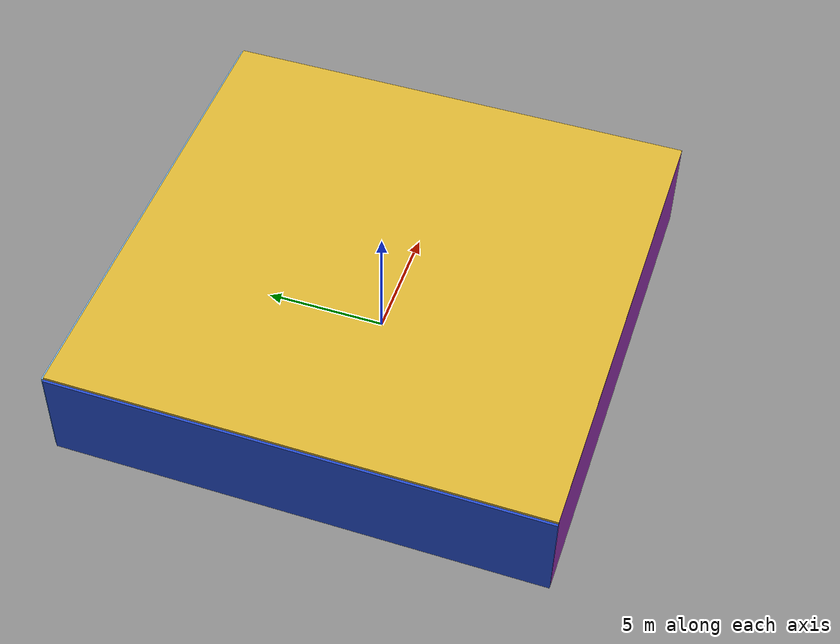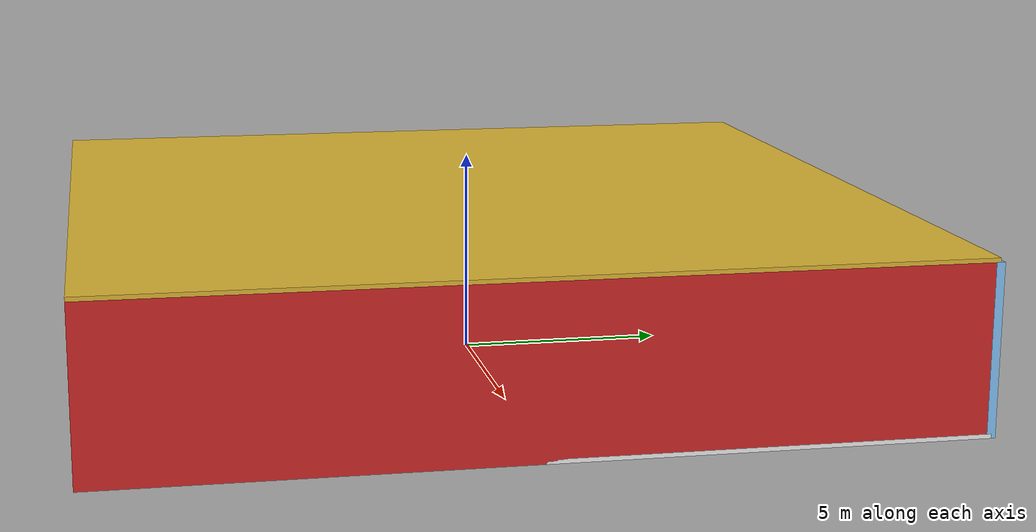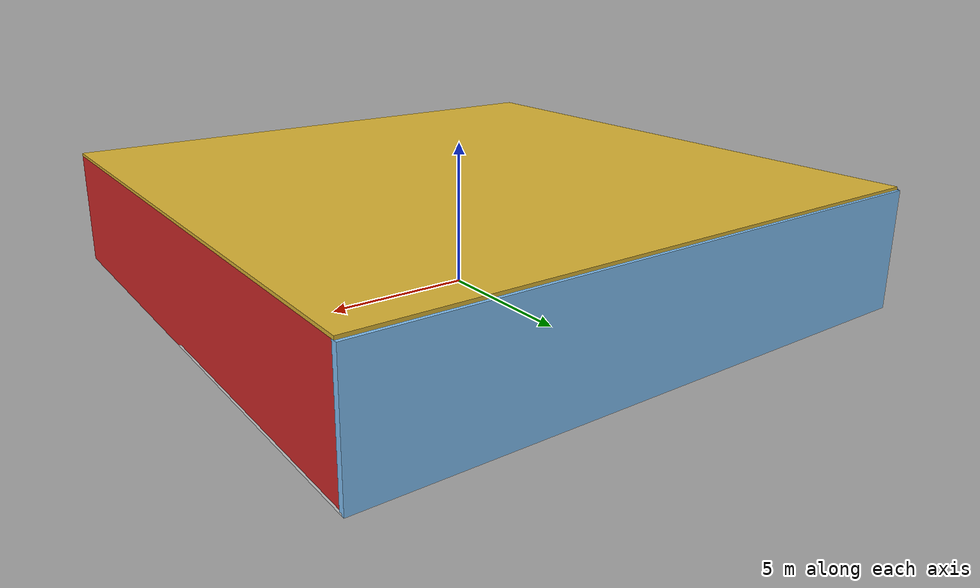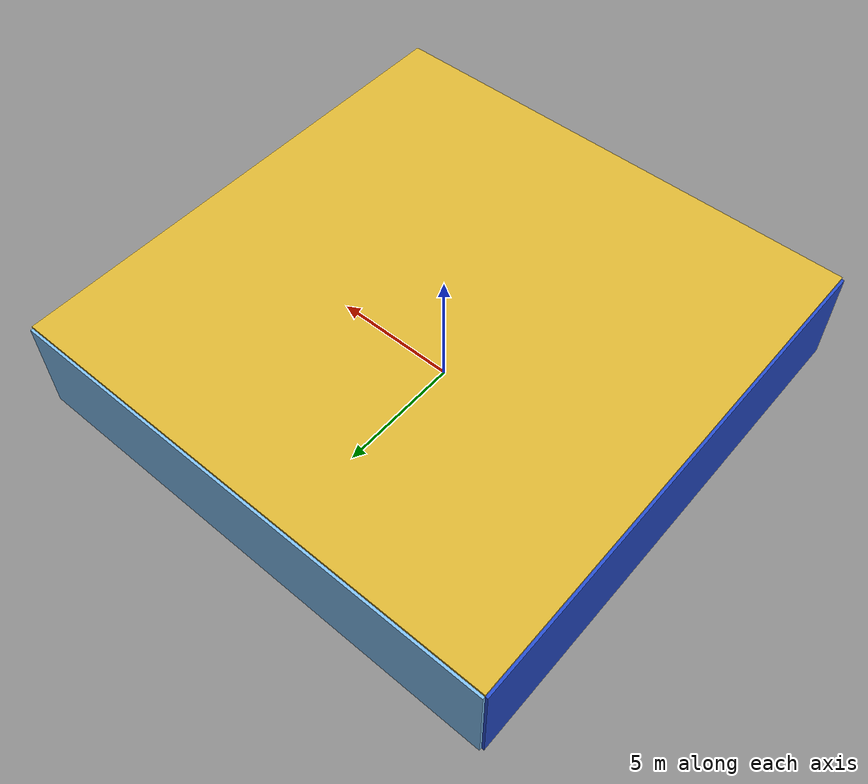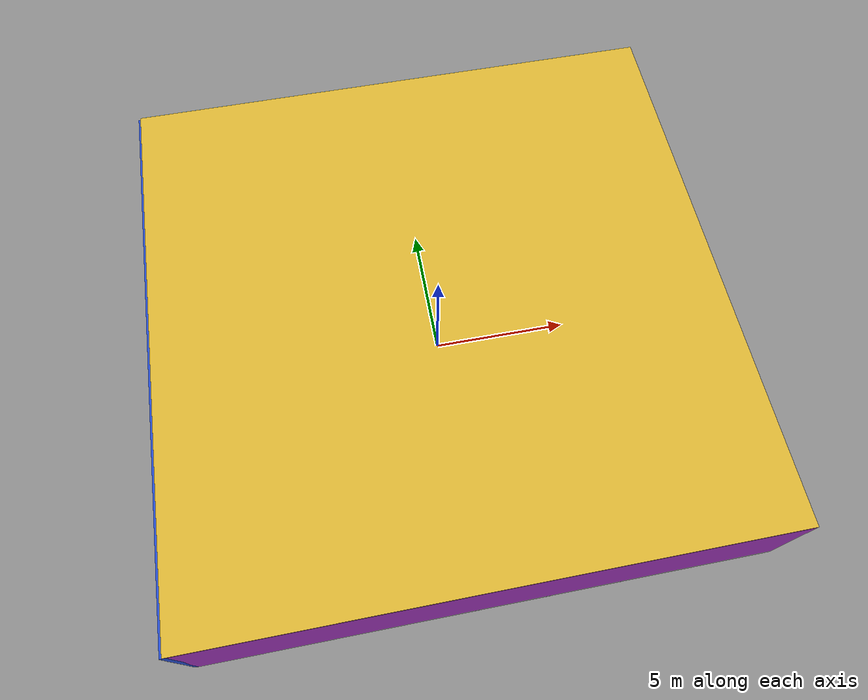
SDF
<sdf version="1.4">
 <world name="default">
  <physics type="ode">
   <max_step_size>0.001</max_step_size>
   <real_time_factor>1</real_time_factor>
   <real_time_update_rate>1000</real_time_update_rate>
   <gravity>0 0 -9.8</gravity>
  </physics>
  <scene><ambient>0.4 0.4 0.4 1</ambient><background>0.7 0.7 0.7 1</background><shadows>1</shadows></scene>
  <model name="Surrounding">
   <static>1</static>
   <link name="Ceiling">
    <collision name="Ceiling_Collision"><geometry><box><size>20 20 0.1</size></box></geometry></collision>
    <visual name="Ceiling_Visual">
     <geometry><box><size>20 20 0.1</size></box></geometry>
     <material>
      <script><uri>file://media/materials/scripts/gazebo.material</uri><name>Gazebo/Gold</name></script>
     </material>
    </visual>
    <pose>0 0 4.05 0 0 0</pose>
   </link>
   <link name="Wall_South">
    <collision name="Wall_South_Collision">
     <geometry><box><size>20 0 4</size></box></geometry>
     <pose>0 0 2 0 -0 0</pose>
    </collision>
    <visual name="Wall_South_Visual">
     <pose>0 0 2 0 -0 0</pose>
     <geometry><box><size>20 0 4</size></box></geometry>
     <material>
      <script><uri>file://media/materials/scripts/gazebo.material</uri><name>Gazebo/PurpleGlow</name></script>
     </material>
    </visual>
    <velocity_decay><linear>0</linear><angular>0</angular></velocity_decay>
    <pose>0 -10 0 0 -0 0</pose>
   </link>
   <link name="Wall_East">
    <collision name="Wall_21_Collision">
     <geometry><box><size>20 0 4</size></box></geometry>
     <pose>0 0 2 0 -0 0</pose>
    </collision>
    <visual name="Wall_21_Visual">
     <pose>0 0 2 0 -0 0</pose>
     <geometry><box><size>20 0 4</size></box></geometry>
     <material>
      <script><uri>file://media/materials/scripts/gazebo.material</uri><name>Gazebo/RedBright</name></script>
     </material>
    </visual>
    <velocity_decay><linear>0</linear><angular>0</angular></velocity_decay>
    <pose>10 0 0 0 -0 1.5708</pose>
   </link>
   <link name="Wall_North">
    <collision name="Wall_22_Collision">
     <geometry><box><size>20 0.2 4</size></box></geometry>
     <pose>0 0 2 0 -0 0</pose>
    </collision>
    <visual name="Wall_22_Visual">
     <pose>0 0 2 0 -0 0</pose>
     <geometry><box><size>20 0.2 4</size></box></geometry>
     <material>
      <script><uri>file://media/materials/scripts/gazebo.material</uri><name>Gazebo/SkyBlue</name></script>
     </material>
    </visual>
    <velocity_decay><linear>0</linear><angular>0</angular></velocity_decay>
    <pose>0 10 0 0 -0 0</pose>
   </link>
   <link name="Wall_West">
    <collision name="Wall_23_Collision">
     <geometry><box><size>20 0.2 4</size></box></geometry>
     <pose>0 0 2 0 -0 0</pose>
    </collision>
    <visual name="Wall_23_Visual">
     <pose>0 0 2 0 -0 0</pose>
     <geometry><box><size>20 0.2 4</size></box></geometry>
     <material>
      <script><uri>file://media/materials/scripts/gazebo.material</uri><name>Gazebo/BlueGlow</name></script>
     </material>
    </visual>
    <velocity_decay><linear>0</linear><angular>0</angular></velocity_decay>
    <pose>-10 0 0 0 0 -1.5708</pose>
   </link>
   <link name="Ground_link">
    <collision name="collision">
     <pose>0 0 .05 0 -0 0</pose>
     <geometry><box><size>20 20 0.1</size></box></geometry>
    </collision>
    <visual name="visual">
     <pose>0 0 .05 0 -0 0</pose>
     <geometry><box><size>20 20 0.1</size></box></geometry>
     <material>
      <script><uri>file://media/materials/scripts/gazebo.material</uri><name>Gazebo/White</name></script>
     </material>
    </visual>
   </link>
   <static>1</static>
  </model>
  <spherical_coordinates>
   <surface_model>EARTH_WGS84</surface_model>
   <latitude_deg>0</latitude_deg>
   <longitude_deg>0</longitude_deg>
   <elevation>0</elevation>
   <heading_deg>0</heading_deg>
  </spherical_coordinates>
  <light name="lightball_0" type="diffuse">
   <diffuse>0.8 0.8 0.8 1</diffuse>
   <specular>0.2 0.2 0.2 1</specular>
   <attenuation>
    <range>100</range>
    <constant>0.7</constant>
    <linear>0.01</linear>
    <quadratic>0.001</quadratic>
   </attenuation>
   <direction>-0.5 0.1 -0.9</direction>
   <pose>-5.64224870697 -3.50484569137 2.28259137516 0 0 0</pose>
  </light>
  <light name="lightball_1" type="diffuse">
   <diffuse>0.8 0.8 0.8 1</diffuse>
   <specular>0.2 0.2 0.2 1</specular>
   <attenuation>
    <range>100</range>
    <constant>0.7</constant>
    <linear>0.01</linear>
    <quadratic>0.001</quadratic>
   </attenuation>
   <direction>-0.5 0.1 -0.9</direction>
   <pose>5.17230431571 0.477101365254 3.12581284848 0 0 0</pose>
  </light>
  <light name="lightball_2" type="diffuse">
   <diffuse>0.8 0.8 0.8 1</diffuse>
   <specular>0.2 0.2 0.2 1</specular>
   <attenuation>
    <range>100</range>
    <constant>0.7</constant>
    <linear>0.01</linear>
    <quadratic>0.001</quadratic>
   </attenuation>
   <direction>-0.5 0.1 -0.9</direction>
   <pose>7.49058188743 -9.55939037666 1.31032992169 0 0 0</pose>
  </light>
  <light name="lightball_3" type="diffuse">
   <diffuse>0.8 0.8 0.8 1</diffuse>
   <specular>0.2 0.2 0.2 1</specular>
   <attenuation>
    <range>100</range>
    <constant>0.7</constant>
    <linear>0.01</linear>
    <quadratic>0.001</quadratic>
   </attenuation>
   <direction>-0.5 0.1 -0.9</direction>
   <pose>-5.37021584105 -0.231115867993 3.41230898413 0 0 0</pose>
  </light>
  <light name="lightball_4" type="diffuse">
   <diffuse>0.8 0.8 0.8 1</diffuse>
   <specular>0.2 0.2 0.2 1</specular>
   <attenuation>
    <range>100</range>
    <constant>0.7</constant>
    <linear>0.01</linear>
    <quadratic>0.001</quadratic>
   </attenuation>
   <direction>-0.5 0.1 -0.9</direction>
   <pose>-9.23225098381 4.9744858021 0.996639440903 0 0 0</pose>
  </light>
  <light name="lightball_5" type="diffuse">
   <diffuse>0.8 0.8 0.8 1</diffuse>
   <specular>0.2 0.2 0.2 1</specular>
   <attenuation>
    <range>100</range>
    <constant>0.7</constant>
    <linear>0.01</linear>
    <quadratic>0.001</quadratic>
   </attenuation>
   <direction>-0.5 0.1 -0.9</direction>
   <pose>8.03370964206 -5.92249037093 1.37029622129 0 0 0</pose>
  </light>
  <light name="lightball_6" type="diffuse">
   <diffuse>0.8 0.8 0.8 1</diffuse>
   <specular>0.2 0.2 0.2 1</specular>
   <attenuation>
    <range>100</range>
    <constant>0.7</constant>
    <linear>0.01</linear>
    <quadratic>0.001</quadratic>
   </attenuation>
   <direction>-0.5 0.1 -0.9</direction>
   <pose>9.74500129051 3.86050326581 0.874966525773 0 0 0</pose>
  </light>
  <light name="lightball_7" type="diffuse">
   <diffuse>0.8 0.8 0.8 1</diffuse>
   <specular>0.2 0.2 0.2 1</specular>
   <attenuation>
    <range>100</range>
    <constant>0.7</constant>
    <linear>0.01</linear>
    <quadratic>0.001</quadratic>
   </attenuation>
   <direction>-0.5 0.1 -0.9</direction>
   <pose>-8.14373403799 -0.202408639016 3.05800166464 0 0 0</pose>
  </light>
  <light name="lightball_8" type="diffuse">
   <diffuse>0.8 0.8 0.8 1</diffuse>
   <specular>0.2 0.2 0.2 1</specular>
   <attenuation>
    <range>100</range>
    <constant>0.7</constant>
    <linear>0.01</linear>
    <quadratic>0.001</quadratic>
   </attenuation>
   <direction>-0.5 0.1 -0.9</direction>
   <pose>0.829573471392 -7.64329554522 1.56342966728 0 0 0</pose>
  </light>
  <light name="lightball_9" type="diffuse">
   <diffuse>0.8 0.8 0.8 1</diffuse>
   <specular>0.2 0.2 0.2 1</specular>
   <attenuation>
    <range>100</range>
    <constant>0.7</constant>
    <linear>0.01</linear>
    <quadratic>0.001</quadratic>
   </attenuation>
   <direction>-0.5 0.1 -0.9</direction>
   <pose>1.81703423492 -9.52650216082 1.49147699657 0 0 0</pose>
  </light>
  <light name="lightball_10" type="diffuse">
   <diffuse>0.8 0.8 0.8 1</diffuse>
   <specular>0.2 0.2 0.2 1</specular>
   <attenuation>
    <range>100</range>
    <constant>0.7</constant>
    <linear>0.01</linear>
    <quadratic>0.001</quadratic>
   </attenuation>
   <direction>-0.5 0.1 -0.9</direction>
   <pose>5.84793129418 -4.01814718334 1.45717517036 0 0 0</pose>
  </light>
  <light name="lightball_11" type="diffuse">
   <diffuse>0.8 0.8 0.8 1</diffuse>
   <specular>0.2 0.2 0.2 1</specular>
   <attenuation>
    <range>100</range>
    <constant>0.7</constant>
    <linear>0.01</linear>
    <quadratic>0.001</quadratic>
   </attenuation>
   <direction>-0.5 0.1 -0.9</direction>
   <pose>-9.67108233522 8.81330028211 1.35632504356 0 0 0</pose>
  </light>
  <include><uri>model://cabinet</uri><pose>-5.24161611358 -4.14979616184 0 0 0 0.78841988416</pose></include>
  <include><uri>model://cabinet</uri><pose>-4.53374396789 -0.906607210546 0 0 0 2.04708891221</pose></include>
  <include>
   <uri>model://textured_shapes</uri>
   <pose>-1.50588691161 4.03578532809 0 0 0 1.44087313693</pose>
  </include>
  <include><uri>model://cabinet</uri><pose>1.02298796232 -6.97438004452 0 0 0 3.11430437611</pose></include>
  <include>
   <uri>model://textured_shapes</uri>
   <pose>1.489189199 -2.01576893404 0 0 0 0.720674395934</pose>
  </include>
  <include><uri>model://table</uri><pose>1.23732735964 6.98001623372 0 0 0 1.49486648091</pose></include>
  <include>
   <uri>model://construction_cone</uri>
   <pose>4.46958396492 -4.96455180376 0 0 0 2.37451920351</pose>
  </include>
  <include><uri>model://cabinet</uri><pose>7.5862524964 -5.15736223486 0 0 0 0.465617279041</pose></include>
  <include><uri>model://cabinet</uri><pose>8.09081872165 6.82204999282 0 0 0 1.38685124899</pose></include>
 </world>
</sdf>

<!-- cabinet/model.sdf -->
<sdf version="1.5">
  <model name="cabinet">
    <static>true</static>
    <link name="cabinet_bottom_plate">
      <inertial>
        <pose>0 0 -1 0 0 0</pose>
        <inertia>
          <ixx>2.050000</ixx>
          <ixy>0</ixy>
          <ixz>0</ixz>
          <iyy>2.050000</iyy>
          <iyz>0</iyz>
          <izz>2.050000</izz>
        </inertia>
        <mass>25.000000</mass>
      </inertial>
      <collision name="cabinet_bottom_plate_geom">
        <pose>0 0 0.010000 0 0 0</pose>
        <geometry>
          <box>
            <size>0.450000 0.450000 0.020000</size>
          </box>
        </geometry>
      </collision>
      <visual name="cabinet_bottom_plate_geom_visual">
        <pose>0 0 0.010000 0 0 0</pose>
        <geometry>
          <box>
            <size>0.450000 0.450000 0.020000</size>
          </box>
        </geometry>
        <material>
          <script>
            <uri>model://media/materials/scripts/gazebo.material</uri>
            <name>Gazebo/Wood</name>
          </script>
        </material>
      </visual>
      <collision name="cabinet_bottom_plate_geom_cabinet_back_plate">
        <pose>0.235000 0 0.510000 0 0 0</pose>
        <geometry>
          <box>
            <size>0.020000 0.450000 1.020000</size>
          </box>
        </geometry>
      </collision>
      <visual name="cabinet_bottom_plate_geom_cabinet_back_plate_visual">
        <pose>0.235000 0 0.510000 0 0 0</pose>
        <geometry>
          <box>
            <size>0.020000 0.450000 1.020000</size>
          </box>
        </geometry>
        <material>
          <script>
            <uri>model://media/materials/scripts/gazebo.material</uri>
            <name>Gazebo/Wood</name>
          </script>
        </material>
      </visual>
      <collision name="cabinet_bottom_plate_geom_cabinet_left_plate">
        <pose>0 0.235000 0.510000 0 0 0</pose>
        <geometry>
          <box>
            <size>0.450000 0.020000 1.020000</size>
          </box>
        </geometry>
      </collision>
      <visual name="cabinet_bottom_plate_geom_cabinet_left_plate_visual">
        <pose>0 0.235000 0.510000 0 0 0</pose>
        <geometry>
          <box>
            <size>0.450000 0.020000 1.020000</size>
          </box>
        </geometry>
        <material>
          <script>
            <uri>model://media/materials/scripts/gazebo.material</uri>
            <name>Gazebo/Wood</name>
          </script>
        </material>
      </visual>
      <collision name="cabinet_bottom_plate_geom_cabinet_middle_plate">
        <pose>0 0 0.510000 0 0 0</pose>
        <geometry>
          <box>
            <size>0.450000 0.450000 0.020000</size>
          </box>
        </geometry>
      </collision>
      <visual name="cabinet_bottom_plate_geom_cabinet_middle_plate_visual">
        <pose>0 0 0.510000 0 0 0</pose>
        <geometry>
          <box>
            <size>0.450000 0.450000 0.020000</size>
          </box>
        </geometry>
        <material>
          <script>
            <uri>model://media/materials/scripts/gazebo.material</uri>
            <name>Gazebo/Wood</name>
          </script>
        </material>
      </visual>
      <collision name="cabinet_bottom_plate_geom_cabinet_right_plate">
        <pose>0 -0.235000 0.510000 0 0 0</pose>
        <geometry>
          <box>
            <size>0.450000 0.020000 1.020000</size>
          </box>
        </geometry>
      </collision>
      <visual name="cabinet_bottom_plate_geom_cabinet_right_plate_visual">
        <pose>0 -0.235000 0.510000 0 0 0</pose>
        <geometry>
          <box>
            <size>0.450000 0.020000 1.020000</size>
          </box>
        </geometry>
        <material>
          <script>
            <uri>model://media/materials/scripts/gazebo.material</uri>
            <name>Gazebo/Wood</name>
          </script>
        </material>
      </visual>
      <collision name="cabinet_bottom_plate_geom_cabinet_top_plate">
        <pose>0 0 1.010000 0 0 0</pose>
        <geometry>
          <box>
            <size>0.450000 0.450000 0.020000</size>
          </box>
        </geometry>
      </collision>
      <visual name="cabinet_bottom_plate_geom_cabinet_top_plate_visual">
        <pose>0 0 1.010000 0 0 0</pose>
        <geometry>
          <box>
            <size>0.450000 0.450000 0.020000</size>
          </box>
        </geometry>
        <material>
          <script>
            <uri>model://media/materials/scripts/gazebo.material</uri>
            <name>Gazebo/Wood</name>
          </script>
        </material>
      </visual>
    </link>
  </model>
</sdf>

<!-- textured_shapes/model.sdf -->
<sdf version="1.6">
  <model name="textured_shapes">
    <pose>0 0 0.5 0 0 0</pose>
    <link name="box">
      <pose>0 -1.5 0 0 0 0</pose>
      <collision name="collision">
        <geometry>
          <box>
            <size>1 1 1</size>
          </box>
        </geometry>
      </collision>
      <visual name="visual">
        <geometry>
          <box>
            <size>1 1 1</size>
          </box>
        </geometry>
        <material>
          <script>
            <uri>model://../model_source/models/textured_shapes/materials/scripts</uri>
            <uri>model://../model_source/models/textured_shapes/materials/textures</uri>
            <name>TexturedShape/Squares</name>
          </script>
        </material>
      </visual>
    </link>
    <link name="sphere">
      <collision name="collision">
        <geometry>
          <sphere>
            <radius>0.5</radius>
          </sphere>
        </geometry>
      </collision>
      <visual name="visual">
        <geometry>
          <sphere>
            <radius>0.5</radius>
          </sphere>
        </geometry>
        <material>
          <script>
            <uri>model://../model_source/models/textured_shapes/materials/scripts</uri>
            <uri>model://../model_source/models/textured_shapes/materials/textures</uri>
            <name>TexturedShape/Squares</name>
          </script>
        </material>
      </visual>
    </link>
    <link name="cylinder">
      <pose>0 1.5 0 0 0 0</pose>
      <collision name="collision">
        <geometry>
          <cylinder>
            <radius>0.5</radius>
            <length>1</length>
          </cylinder>
        </geometry>
      </collision>
      <visual name="visual">
        <geometry>
          <cylinder>
            <radius>0.5</radius>
            <length>1</length>
          </cylinder>
        </geometry>
        <material>
          <script>
            <uri>model://../model_source/models/textured_shapes/materials/scripts</uri>
            <uri>model://../model_source/models/textured_shapes/materials/textures</uri>
            <name>TexturedShape/Squares</name>
          </script>
        </material>
      </visual>
    </link>
  </model>
</sdf>

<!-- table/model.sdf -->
<sdf version="1.5">
  <model name="table">
    <static>true</static>
    <link name="link">
      <collision name="surface">
        <pose>0 0 1.0 0 0 0</pose>
        <geometry>
          <box>
            <size>1.5 0.8 0.03</size>
          </box>
        </geometry>
        <surface>
          <friction>
            <ode>
              <mu>0.6</mu>
              <mu2>0.6</mu2>
            </ode>
          </friction>
        </surface>
      </collision>
      <visual name="visual1">
        <pose>0 0 1.0 0 0 0</pose>
        <geometry>
          <box>
            <size>1.5 0.8 0.03</size>
          </box>
        </geometry>
        <material>
          <script>
            <uri>model://media/materials/scripts/gazebo.material</uri>
            <name>Gazebo/Wood</name>
          </script>
        </material>
      </visual>
      <collision name="front_left_leg">
        <pose>0.68 0.38 0.5 0 0 0</pose>
        <geometry>
          <cylinder>
            <radius>0.02</radius>
            <length>1.0</length>
          </cylinder>
        </geometry>
      </collision>
      <visual name="front_left_leg">
        <pose>0.68 0.38 0.5 0 0 0</pose>
        <geometry>
          <cylinder>
            <radius>0.02</radius>
            <length>1.0</length>
          </cylinder>
        </geometry>
        <material>
          <script>
            <uri>model://media/materials/scripts/gazebo.material</uri>
            <name>Gazebo/Grey</name>
          </script>
        </material>
      </visual>
      <collision name="front_right_leg">
        <pose>0.68 -0.38 0.5 0 0 0</pose>
        <geometry>
          <cylinder>
            <radius>0.02</radius>
            <length>1.0</length>
          </cylinder>
        </geometry>
      </collision>
      <visual name="front_right_leg">
        <pose>0.68 -0.38 0.5 0 0 0</pose>
        <geometry>
          <cylinder>
            <radius>0.02</radius>
            <length>1.0</length>
          </cylinder>
        </geometry>
        <material>
          <script>
            <uri>model://media/materials/scripts/gazebo.material</uri>
            <name>Gazebo/Grey</name>
          </script>
        </material>
      </visual>
      <collision name="back_right_leg">
        <pose>-0.68 -0.38 0.5 0 0 0</pose>
        <geometry>
          <cylinder>
            <radius>0.02</radius>
            <length>1.0</length>
          </cylinder>
        </geometry>
      </collision>
      <visual name="back_right_leg">
        <pose>-0.68 -0.38 0.5 0 0 0</pose>
        <geometry>
          <cylinder>
            <radius>0.02</radius>
            <length>1.0</length>
          </cylinder>
        </geometry>
        <material>
          <script>
            <uri>model://media/materials/scripts/gazebo.material</uri>
            <name>Gazebo/Grey</name>
          </script>
        </material>
      </visual>
      <collision name="back_left_leg">
        <pose>-0.68 0.38 0.5 0 0 0</pose>
        <geometry>
          <cylinder>
            <radius>0.02</radius>
            <length>1.0</length>
          </cylinder>
        </geometry>
      </collision>
      <visual name="back_left_leg">
        <pose>-0.68 0.38 0.5 0 0 0</pose>
        <geometry>
          <cylinder>
            <radius>0.02</radius>
            <length>1.0</length>
          </cylinder>
        </geometry>
        <material>
          <script>
            <uri>model://media/materials/scripts/gazebo.material</uri>
            <name>Gazebo/Grey</name>
          </script>
        </material>
      </visual>
    </link>
  </model>
</sdf>

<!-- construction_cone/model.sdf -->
<sdf version="1.5">
  <model name="Construction Cone">
    <link name="link">
      <collision name="collision">
        <geometry>
          <mesh>
            <scale>10 10 10</scale>
            <uri>file://isr-testbed/construction_cone/meshes/construction_cone.dae</uri>
          </mesh>
        </geometry>
      </collision>
      <visual name="visual">
        <geometry>
          <mesh>
            <scale>10 10 10</scale>
            <uri>file://isr-testbed/construction_cone/meshes/construction_cone.dae</uri>
          </mesh>
        </geometry>
      </visual>
    </link>
  </model>
</sdf>
